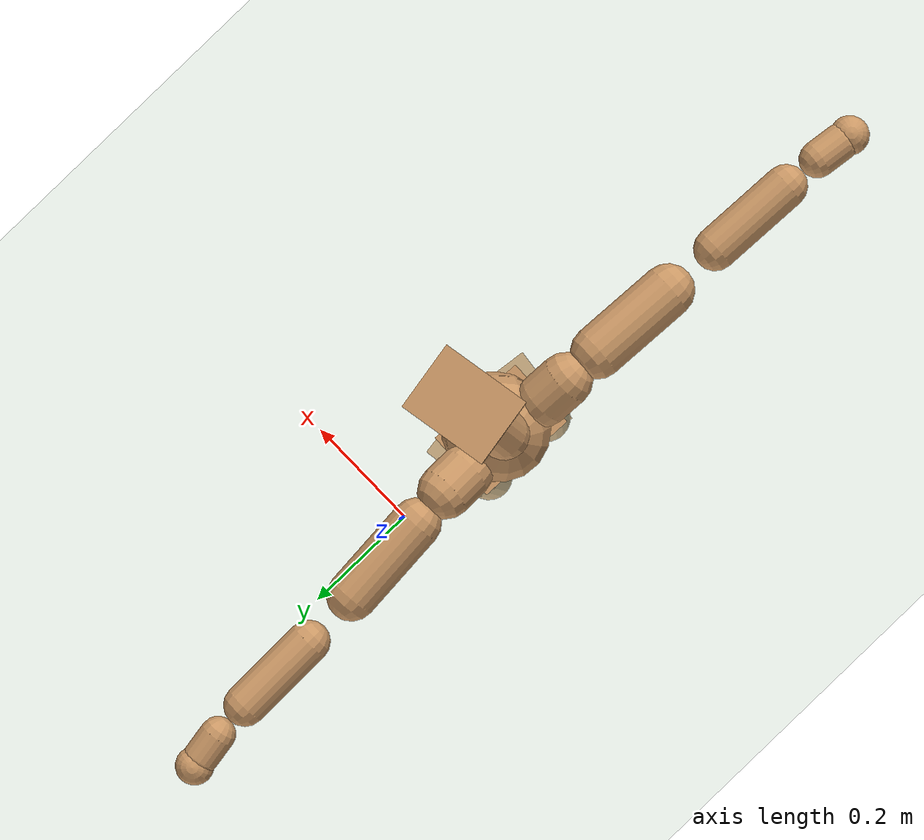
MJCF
<mujoco model="humanoid">
  <compiler coordinate="local" angle="radian"/>
  <default>
    <joint damping="0.0" armature="0.01" stiffness="0.0" limited="true"/>
    <geom conaffinity="1" condim="3" contype="7" margin="0.001" rgba="0.8 0.6 .4 1"/>
  </default>
  <asset>
    <texture type="skybox" builtin="gradient" rgb1=".4 .5 .6" rgb2="0 0 0" width="100" height="100"/>
    <texture builtin="flat" height="1278" mark="cross" markrgb="1 1 1" name="texgeom" random="0.01" rgb1="0.8 0.6 0.4" rgb2="0.8 0.6 0.4" type="cube" width="127"/>
    <texture builtin="checker" height="100" name="texplane" rgb1="0 0 0" rgb2="0.8 0.8 0.8" type="2d" width="100"/>
    <material name="MatPlane" reflectance="0.5" shininess="1" specular="1" texrepeat="60 60" texture="texplane"/>
    <material name="geom" texture="texgeom" texuniform="true"/>
  </asset>
  <worldbody>
    <light cutoff="100" diffuse="1 1 1" dir="-0 0 -1.3" directional="true" exponent="1" pos="0 0 1.3" specular=".1 .1 .1"/>
    <geom conaffinity="1" condim="3" name="floor" pos="0 0 0" rgba="0.8 0.9 0.8 1" size="100 100 .2" type="plane" material="MatPlane"/>
    <body name="Pelvis" pos="-0.0016 -0.2169 0.0121">
      <freejoint name="Pelvis"/>
      <geom type="box" contype="1" conaffinity="1" density="500" pos="-0.0062 0.0002 -0.0124" size="0.0636 0.0899 0.0361" quat="0.9999 0.0000 0.0000 -0.0143" name="Pelvis"/>
      <body name="L_Hip" pos="-0.0169 0.0573 -0.0878">
        <joint name="L_Hip_x" type="hinge" pos="0 0 0" axis="1 0 0" stiffness="800" damping="80" armature="0.02" range="-180.0000 180.0000"/>
        <joint name="L_Hip_y" type="hinge" pos="0 0 0" axis="0 1 0" stiffness="800" damping="80" armature="0.02" range="-180.0000 180.0000"/>
        <joint name="L_Hip_z" type="hinge" pos="0 0 0" axis="0 0 1" stiffness="800" damping="80" armature="0.02" range="-180.0000 180.0000"/>
        <geom type="capsule" contype="1" conaffinity="1" density="500" fromto="-0.0002 0.0069 -0.0725 -0.0008 0.0275 -0.2899" size="0.0484" name="L_Hip"/>
        <body name="L_Knee" pos="-0.001 0.0344 -0.3623">
          <joint name="L_Knee_x" type="hinge" pos="0 0 0" axis="1 0 0" stiffness="800" damping="80" armature="0.02" range="-180.0000 180.0000"/>
          <joint name="L_Knee_y" type="hinge" pos="0 0 0" axis="0 1 0" stiffness="800" damping="80" armature="0.02" range="-180.0000 180.0000"/>
          <joint name="L_Knee_z" type="hinge" pos="0 0 0" axis="0 0 1" stiffness="800" damping="80" armature="0.02" range="-180.0000 180.0000"/>
          <geom type="capsule" contype="1" conaffinity="1" density="500" fromto="-0.0074 -0.0028 -0.0766 -0.0295 -0.0112 -0.3065" size="0.0457" name="L_Knee"/>
          <body name="L_Ankle" pos="-0.0368 -0.014 -0.3831">
            <joint name="L_Ankle_x" type="hinge" pos="0 0 0" axis="1 0 0" stiffness="800" damping="80" armature="0.02" range="-180.0000 180.0000"/>
            <joint name="L_Ankle_y" type="hinge" pos="0 0 0" axis="0 1 0" stiffness="800" damping="80" armature="0.02" range="-180.0000 180.0000"/>
            <joint name="L_Ankle_z" type="hinge" pos="0 0 0" axis="0 0 1" stiffness="800" damping="80" armature="0.02" range="-180.0000 180.0000"/>
            <geom type="box" contype="1" conaffinity="1" density="500" pos="0.0569 0.0083 -0.0268" size="0.0787 0.0405 0.0204" quat="0.9974 0.0000 0.0000 0.0723" name="L_Ankle"/>
            <body name="L_Toe" pos="0.1137 0.0166 -0.0536">
              <joint name="L_Toe_x" type="hinge" pos="0 0 0" axis="1 0 0" stiffness="500" damping="50" armature="0.02" range="-180.0000 180.0000"/>
              <joint name="L_Toe_y" type="hinge" pos="0 0 0" axis="0 1 0" stiffness="500" damping="50" armature="0.02" range="-180.0000 180.0000"/>
              <joint name="L_Toe_z" type="hinge" pos="0 0 0" axis="0 0 1" stiffness="500" damping="50" armature="0.02" range="-180.0000 180.0000"/>
              <geom type="box" contype="1" conaffinity="1" density="500" pos="0.0000 0.0000 0.0263" size="0.0008 0.0021 0.001" quat="0.9968 0.0000 0.0000 0.0795" name="L_Toe"/>
            </body>
          </body>
        </body>
      </body>
      <body name="R_Hip" pos="-0.0122 -0.0545 -0.0871">
        <joint name="R_Hip_x" type="hinge" pos="0 0 0" axis="1 0 0" stiffness="800" damping="80" armature="0.02" range="-180.0000 180.0000"/>
        <joint name="R_Hip_y" type="hinge" pos="0 0 0" axis="0 1 0" stiffness="800" damping="80" armature="0.02" range="-180.0000 180.0000"/>
        <joint name="R_Hip_z" type="hinge" pos="0 0 0" axis="0 0 1" stiffness="800" damping="80" armature="0.02" range="-180.0000 180.0000"/>
        <geom type="capsule" contype="1" conaffinity="1" density="500" fromto="-0.0007 -0.0077 -0.0740 -0.0026 -0.0310 -0.2959" size="0.0477" name="R_Hip"/>
        <body name="R_Knee" pos="-0.0033 -0.0387 -0.3699">
          <joint name="R_Knee_x" type="hinge" pos="0 0 0" axis="1 0 0" stiffness="800" damping="80" armature="0.02" range="-180.0000 180.0000"/>
          <joint name="R_Knee_y" type="hinge" pos="0 0 0" axis="0 1 0" stiffness="800" damping="80" armature="0.02" range="-180.0000 180.0000"/>
          <joint name="R_Knee_z" type="hinge" pos="0 0 0" axis="0 0 1" stiffness="800" damping="80" armature="0.02" range="-180.0000 180.0000"/>
          <geom type="capsule" contype="1" conaffinity="1" density="500" fromto="-0.0069 0.0035 -0.0767 -0.0276 0.0139 -0.3067" size="0.0462" name="R_Knee"/>
          <body name="R_Ankle" pos="-0.0345 0.0174 -0.3834">
            <joint name="R_Ankle_x" type="hinge" pos="0 0 0" axis="1 0 0" stiffness="800" damping="80" armature="0.02" range="-180.0000 180.0000"/>
            <joint name="R_Ankle_y" type="hinge" pos="0 0 0" axis="0 1 0" stiffness="800" damping="80" armature="0.02" range="-180.0000 180.0000"/>
            <joint name="R_Ankle_z" type="hinge" pos="0 0 0" axis="0 0 1" stiffness="800" damping="80" armature="0.02" range="-180.0000 180.0000"/>
            <geom type="box" contype="1" conaffinity="1" density="500" pos="0.0584 -0.0071 -0.0225" size="0.082 0.0441 0.0189" quat="0.9982 0.0000 0.0000 -0.0601" name="R_Ankle"/>
            <body name="R_Toe" pos="0.1167 -0.0141 -0.045">
              <joint name="R_Toe_x" type="hinge" pos="0 0 0" axis="1 0 0" stiffness="500" damping="50" armature="0.02" range="-180.0000 180.0000"/>
              <joint name="R_Toe_y" type="hinge" pos="0 0 0" axis="0 1 0" stiffness="500" damping="50" armature="0.02" range="-180.0000 180.0000"/>
              <joint name="R_Toe_z" type="hinge" pos="0 0 0" axis="0 0 1" stiffness="500" damping="50" armature="0.02" range="-180.0000 180.0000"/>
              <geom type="box" contype="1" conaffinity="1" density="500" pos="0.0000 0.0000 0.0244" size="0.0009 0.0021 0.001" quat="0.9987 0.0000 0.0000 -0.0508" name="R_Toe"/>
            </body>
          </body>
        </body>
      </body>
      <body name="Torso" pos="-0.0082 -0.0018 0.1006">
        <joint name="Torso_x" type="hinge" pos="0 0 0" axis="1 0 0" stiffness="1000" damping="100" armature="0.02" range="-180.0000 180.0000"/>
        <joint name="Torso_y" type="hinge" pos="0 0 0" axis="0 1 0" stiffness="1000" damping="100" armature="0.02" range="-180.0000 180.0000"/>
        <joint name="Torso_z" type="hinge" pos="0 0 0" axis="0 0 1" stiffness="1000" damping="100" armature="0.02" range="-180.0000 180.0000"/>
        <geom type="capsule" contype="1" conaffinity="1" density="500" fromto="0.0041 0.0023 0.0822 0.0028 0.0015 0.0548" size="0.0582" name="Torso"/>
        <body name="Spine" pos="0.0069 0.0038 0.137">
          <joint name="Spine_x" type="hinge" pos="0 0 0" axis="1 0 0" stiffness="1000" damping="100" armature="0.02" range="-180.0000 180.0000"/>
          <joint name="Spine_y" type="hinge" pos="0 0 0" axis="0 1 0" stiffness="1000" damping="100" armature="0.02" range="-180.0000 180.0000"/>
          <joint name="Spine_z" type="hinge" pos="0 0 0" axis="0 0 1" stiffness="1000" damping="100" armature="0.02" range="-180.0000 180.0000"/>
          <geom type="capsule" contype="1" conaffinity="1" density="500" fromto="0.0140 0.0013 0.0305 0.0093 0.0008 0.0203" size="0.0614" name="Spine"/>
          <body name="Chest" pos="0.0234 0.0021 0.0508">
            <joint name="Chest_x" type="hinge" pos="0 0 0" axis="1 0 0" stiffness="1000" damping="100" armature="0.02" range="-180.0000 180.0000"/>
            <joint name="Chest_y" type="hinge" pos="0 0 0" axis="0 1 0" stiffness="1000" damping="100" armature="0.02" range="-180.0000 180.0000"/>
            <joint name="Chest_z" type="hinge" pos="0 0 0" axis="0 0 1" stiffness="1000" damping="100" armature="0.02" range="-180.0000 180.0000"/>
            <geom type="capsule" contype="1" conaffinity="1" density="500" fromto="-0.0274 -0.0015 0.0883 -0.0183 -0.0010 0.0589" size="0.0828" name="Chest"/>
            <body name="Neck" pos="-0.053 -0.0042 0.212">
              <joint name="Neck_x" type="hinge" pos="0 0 0" axis="1 0 0" stiffness="500" damping="50" armature="0.02" range="-180.0000 180.0000"/>
              <joint name="Neck_y" type="hinge" pos="0 0 0" axis="0 1 0" stiffness="500" damping="50" armature="0.02" range="-180.0000 180.0000"/>
              <joint name="Neck_z" type="hinge" pos="0 0 0" axis="0 0 1" stiffness="500" damping="50" armature="0.02" range="-180.0000 180.0000"/>
              <geom type="capsule" contype="1" conaffinity="1" density="500" fromto="0.0105 0.0016 0.0139 0.0420 0.0063 0.0555" size="0.0378" name="Neck"/>
              <body name="Head" pos="0.0525 0.0078 0.0694">
                <joint name="Head_x" type="hinge" pos="0 0 0" axis="1 0 0" stiffness="500" damping="50" armature="0.02" range="-180.0000 180.0000"/>
                <joint name="Head_y" type="hinge" pos="0 0 0" axis="0 1 0" stiffness="500" damping="50" armature="0.02" range="-180.0000 180.0000"/>
                <joint name="Head_z" type="hinge" pos="0 0 0" axis="0 0 1" stiffness="500" damping="50" armature="0.02" range="-180.0000 180.0000"/>
                <geom type="box" contype="1" conaffinity="1" density="500" pos="0.0272 0.0049 0.0357" size="0.0697 0.0542 0.0491" quat="0.9960 0.0000 0.0000 0.0890" name="Head"/>
              </body>
            </body>
            <body name="L_Thorax" pos="-0.0406 0.0625 0.1154">
              <joint name="L_Thorax_x" type="hinge" pos="0 0 0" axis="1 0 0" stiffness="500" damping="50" armature="0.02" range="-180.0000 180.0000"/>
              <joint name="L_Thorax_y" type="hinge" pos="0 0 0" axis="0 1 0" stiffness="500" damping="50" armature="0.02" range="-180.0000 180.0000"/>
              <joint name="L_Thorax_z" type="hinge" pos="0 0 0" axis="0 0 1" stiffness="500" damping="50" armature="0.02" range="-180.0000 180.0000"/>
              <geom type="capsule" contype="1" conaffinity="1" density="500" fromto="-0.0002 0.0147 0.0048 -0.0007 0.0586 0.0193" size="0.0424" name="L_Thorax"/>
              <body name="L_Shoulder" pos="-0.0009 0.0733 0.0241">
                <joint name="L_Shoulder_x" type="hinge" pos="0 0 0" axis="1 0 0" stiffness="500" damping="50" armature="0.02" range="-720.0000 720.0000"/>
                <joint name="L_Shoulder_y" type="hinge" pos="0 0 0" axis="0 1 0" stiffness="500" damping="50" armature="0.02" range="-720.0000 720.0000"/>
                <joint name="L_Shoulder_z" type="hinge" pos="0 0 0" axis="0 0 1" stiffness="500" damping="50" armature="0.02" range="-720.0000 720.0000"/>
                <geom type="capsule" contype="1" conaffinity="1" density="500" fromto="-0.0039 0.0487 -0.0016 -0.0155 0.1950 -0.0064" size="0.0386" name="L_Shoulder"/>
                <body name="L_Elbow" pos="-0.0194 0.2437 -0.0081">
                  <joint name="L_Elbow_x" type="hinge" pos="0 0 0" axis="1 0 0" stiffness="500" damping="50" armature="0.02" range="-720.0000 720.0000"/>
                  <joint name="L_Elbow_y" type="hinge" pos="0 0 0" axis="0 1 0" stiffness="500" damping="50" armature="0.02" range="-720.0000 720.0000"/>
                  <joint name="L_Elbow_z" type="hinge" pos="0 0 0" axis="0 0 1" stiffness="500" damping="50" armature="0.02" range="-720.0000 720.0000"/>
                  <geom type="capsule" contype="1" conaffinity="1" density="500" fromto="-0.0007 0.0450 0.0013 -0.0028 0.1800 0.0053" size="0.0327" name="L_Elbow"/>
                  <body name="L_Wrist" pos="-0.0035 0.2251 0.0067">
                    <joint name="L_Wrist_x" type="hinge" pos="0 0 0" axis="1 0 0" stiffness="300" damping="30" armature="0.02" range="-180.0000 180.0000"/>
                    <joint name="L_Wrist_y" type="hinge" pos="0 0 0" axis="0 1 0" stiffness="300" damping="30" armature="0.02" range="-180.0000 180.0000"/>
                    <joint name="L_Wrist_z" type="hinge" pos="0 0 0" axis="0 0 1" stiffness="300" damping="30" armature="0.02" range="-180.0000 180.0000"/>
                    <geom type="capsule" contype="1" conaffinity="1" density="500" fromto="-0.0025 0.0147 -0.0018 -0.0100 0.0589 -0.0071" size="0.0275" name="L_Wrist"/>
                    <body name="L_Hand" pos="-0.0125 0.0737 -0.0088">
                      <joint name="L_Hand_x" type="hinge" pos="0 0 0" axis="1 0 0" stiffness="300" damping="30" armature="0.02" range="-180.0000 180.0000"/>
                      <joint name="L_Hand_y" type="hinge" pos="0 0 0" axis="0 1 0" stiffness="300" damping="30" armature="0.02" range="-180.0000 180.0000"/>
                      <joint name="L_Hand_z" type="hinge" pos="0 0 0" axis="0 0 1" stiffness="300" damping="30" armature="0.02" range="-180.0000 180.0000"/>
                      <geom type="sphere" contype="1" conaffinity="1" density="500" size="0.0297" pos="0.0000 0.0000 0.0000" name="L_Hand"/>
                    </body>
                  </body>
                </body>
              </body>
            </body>
            <body name="R_Thorax" pos="-0.0436 -0.0657 0.1143">
              <joint name="R_Thorax_x" type="hinge" pos="0 0 0" axis="1 0 0" stiffness="500" damping="50" armature="0.02" range="-180.0000 180.0000"/>
              <joint name="R_Thorax_y" type="hinge" pos="0 0 0" axis="0 1 0" stiffness="500" damping="50" armature="0.02" range="-180.0000 180.0000"/>
              <joint name="R_Thorax_z" type="hinge" pos="0 0 0" axis="0 0 1" stiffness="500" damping="50" armature="0.02" range="-180.0000 180.0000"/>
              <geom type="capsule" contype="1" conaffinity="1" density="500" fromto="-0.0006 -0.0152 0.0056 -0.0026 -0.0608 0.0224" size="0.0419" name="R_Thorax"/>
              <body name="R_Shoulder" pos="-0.0032 -0.0761 0.028">
                <joint name="R_Shoulder_x" type="hinge" pos="0 0 0" axis="1 0 0" stiffness="500" damping="50" armature="0.02" range="-720.0000 720.0000"/>
                <joint name="R_Shoulder_y" type="hinge" pos="0 0 0" axis="0 1 0" stiffness="500" damping="50" armature="0.02" range="-720.0000 720.0000"/>
                <joint name="R_Shoulder_z" type="hinge" pos="0 0 0" axis="0 0 1" stiffness="500" damping="50" armature="0.02" range="-720.0000 720.0000"/>
                <geom type="capsule" contype="1" conaffinity="1" density="500" fromto="-0.0024 -0.0471 -0.0025 -0.0095 -0.1884 -0.0100" size="0.0411" name="R_Shoulder"/>
                <body name="R_Elbow" pos="-0.0119 -0.2355 -0.0125">
                  <joint name="R_Elbow_x" type="hinge" pos="0 0 0" axis="1 0 0" stiffness="500" damping="50" armature="0.02" range="-720.0000 720.0000"/>
                  <joint name="R_Elbow_y" type="hinge" pos="0 0 0" axis="0 1 0" stiffness="500" damping="50" armature="0.02" range="-720.0000 720.0000"/>
                  <joint name="R_Elbow_z" type="hinge" pos="0 0 0" axis="0 0 1" stiffness="500" damping="50" armature="0.02" range="-720.0000 720.0000"/>
                  <geom type="capsule" contype="1" conaffinity="1" density="500" fromto="-0.0019 -0.0473 0.0011 -0.0076 -0.1890 0.0045" size="0.0333" name="R_Elbow"/>
                  <body name="R_Wrist" pos="-0.0095 -0.2363 0.0056">
                    <joint name="R_Wrist_x" type="hinge" pos="0 0 0" axis="1 0 0" stiffness="300" damping="30" armature="0.02" range="-180.0000 180.0000"/>
                    <joint name="R_Wrist_y" type="hinge" pos="0 0 0" axis="0 1 0" stiffness="300" damping="30" armature="0.02" range="-180.0000 180.0000"/>
                    <joint name="R_Wrist_z" type="hinge" pos="0 0 0" axis="0 0 1" stiffness="300" damping="30" armature="0.02" range="-180.0000 180.0000"/>
                    <geom type="capsule" contype="1" conaffinity="1" density="500" fromto="-0.0019 -0.0151 -0.0013 -0.0076 -0.0604 -0.0054" size="0.0286" name="R_Wrist"/>
                    <body name="R_Hand" pos="-0.0095 -0.0755 -0.0067">
                      <joint name="R_Hand_x" type="hinge" pos="0 0 0" axis="1 0 0" stiffness="300" damping="30" armature="0.02" range="-180.0000 180.0000"/>
                      <joint name="R_Hand_y" type="hinge" pos="0 0 0" axis="0 1 0" stiffness="300" damping="30" armature="0.02" range="-180.0000 180.0000"/>
                      <joint name="R_Hand_z" type="hinge" pos="0 0 0" axis="0 0 1" stiffness="300" damping="30" armature="0.02" range="-180.0000 180.0000"/>
                      <geom type="sphere" contype="1" conaffinity="1" density="500" size="0.0303" pos="0.0000 0.0000 0.0000" name="R_Hand"/>
                    </body>
                  </body>
                </body>
              </body>
            </body>
          </body>
        </body>
      </body>
    </body>
  </worldbody>
  <actuator>
    <motor name="L_Hip_x" joint="L_Hip_x" gear="500"/>
    <motor name="L_Hip_y" joint="L_Hip_y" gear="500"/>
    <motor name="L_Hip_z" joint="L_Hip_z" gear="500"/>
    <motor name="L_Knee_x" joint="L_Knee_x" gear="500"/>
    <motor name="L_Knee_y" joint="L_Knee_y" gear="500"/>
    <motor name="L_Knee_z" joint="L_Knee_z" gear="500"/>
    <motor name="L_Ankle_x" joint="L_Ankle_x" gear="500"/>
    <motor name="L_Ankle_y" joint="L_Ankle_y" gear="500"/>
    <motor name="L_Ankle_z" joint="L_Ankle_z" gear="500"/>
    <motor name="L_Toe_x" joint="L_Toe_x" gear="500"/>
    <motor name="L_Toe_y" joint="L_Toe_y" gear="500"/>
    <motor name="L_Toe_z" joint="L_Toe_z" gear="500"/>
    <motor name="R_Hip_x" joint="R_Hip_x" gear="500"/>
    <motor name="R_Hip_y" joint="R_Hip_y" gear="500"/>
    <motor name="R_Hip_z" joint="R_Hip_z" gear="500"/>
    <motor name="R_Knee_x" joint="R_Knee_x" gear="500"/>
    <motor name="R_Knee_y" joint="R_Knee_y" gear="500"/>
    <motor name="R_Knee_z" joint="R_Knee_z" gear="500"/>
    <motor name="R_Ankle_x" joint="R_Ankle_x" gear="500"/>
    <motor name="R_Ankle_y" joint="R_Ankle_y" gear="500"/>
    <motor name="R_Ankle_z" joint="R_Ankle_z" gear="500"/>
    <motor name="R_Toe_x" joint="R_Toe_x" gear="500"/>
    <motor name="R_Toe_y" joint="R_Toe_y" gear="500"/>
    <motor name="R_Toe_z" joint="R_Toe_z" gear="500"/>
    <motor name="Torso_x" joint="Torso_x" gear="500"/>
    <motor name="Torso_y" joint="Torso_y" gear="500"/>
    <motor name="Torso_z" joint="Torso_z" gear="500"/>
    <motor name="Spine_x" joint="Spine_x" gear="500"/>
    <motor name="Spine_y" joint="Spine_y" gear="500"/>
    <motor name="Spine_z" joint="Spine_z" gear="500"/>
    <motor name="Chest_x" joint="Chest_x" gear="500"/>
    <motor name="Chest_y" joint="Chest_y" gear="500"/>
    <motor name="Chest_z" joint="Chest_z" gear="500"/>
    <motor name="Neck_x" joint="Neck_x" gear="500"/>
    <motor name="Neck_y" joint="Neck_y" gear="500"/>
    <motor name="Neck_z" joint="Neck_z" gear="500"/>
    <motor name="Head_x" joint="Head_x" gear="500"/>
    <motor name="Head_y" joint="Head_y" gear="500"/>
    <motor name="Head_z" joint="Head_z" gear="500"/>
    <motor name="L_Thorax_x" joint="L_Thorax_x" gear="500"/>
    <motor name="L_Thorax_y" joint="L_Thorax_y" gear="500"/>
    <motor name="L_Thorax_z" joint="L_Thorax_z" gear="500"/>
    <motor name="L_Shoulder_x" joint="L_Shoulder_x" gear="500"/>
    <motor name="L_Shoulder_y" joint="L_Shoulder_y" gear="500"/>
    <motor name="L_Shoulder_z" joint="L_Shoulder_z" gear="500"/>
    <motor name="L_Elbow_x" joint="L_Elbow_x" gear="500"/>
    <motor name="L_Elbow_y" joint="L_Elbow_y" gear="500"/>
    <motor name="L_Elbow_z" joint="L_Elbow_z" gear="500"/>
    <motor name="L_Wrist_x" joint="L_Wrist_x" gear="500"/>
    <motor name="L_Wrist_y" joint="L_Wrist_y" gear="500"/>
    <motor name="L_Wrist_z" joint="L_Wrist_z" gear="500"/>
    <motor name="L_Hand_x" joint="L_Hand_x" gear="500"/>
    <motor name="L_Hand_y" joint="L_Hand_y" gear="500"/>
    <motor name="L_Hand_z" joint="L_Hand_z" gear="500"/>
    <motor name="R_Thorax_x" joint="R_Thorax_x" gear="500"/>
    <motor name="R_Thorax_y" joint="R_Thorax_y" gear="500"/>
    <motor name="R_Thorax_z" joint="R_Thorax_z" gear="500"/>
    <motor name="R_Shoulder_x" joint="R_Shoulder_x" gear="500"/>
    <motor name="R_Shoulder_y" joint="R_Shoulder_y" gear="500"/>
    <motor name="R_Shoulder_z" joint="R_Shoulder_z" gear="500"/>
    <motor name="R_Elbow_x" joint="R_Elbow_x" gear="500"/>
    <motor name="R_Elbow_y" joint="R_Elbow_y" gear="500"/>
    <motor name="R_Elbow_z" joint="R_Elbow_z" gear="500"/>
    <motor name="R_Wrist_x" joint="R_Wrist_x" gear="500"/>
    <motor name="R_Wrist_y" joint="R_Wrist_y" gear="500"/>
    <motor name="R_Wrist_z" joint="R_Wrist_z" gear="500"/>
    <motor name="R_Hand_x" joint="R_Hand_x" gear="500"/>
    <motor name="R_Hand_y" joint="R_Hand_y" gear="500"/>
    <motor name="R_Hand_z" joint="R_Hand_z" gear="500"/>
  </actuator>
  <contact>
    <exclude body1="Torso" body2="Chest"/>
    <exclude body1="Head" body2="Chest"/>
    <exclude body1="R_Knee" body2="R_Toe"/>
    <exclude body1="R_Knee" body2="L_Ankle"/>
    <exclude body1="R_Knee" body2="L_Toe"/>
    <exclude body1="L_Knee" body2="L_Toe"/>
    <exclude body1="L_Knee" body2="R_Ankle"/>
    <exclude body1="L_Knee" body2="R_Toe"/>
    <exclude body1="L_Shoulder" body2="Chest"/>
    <exclude body1="R_Shoulder" body2="Chest"/>
  </contact>
  <sensor/>
  <size njmax="700" nconmax="700"/>
</mujoco>
